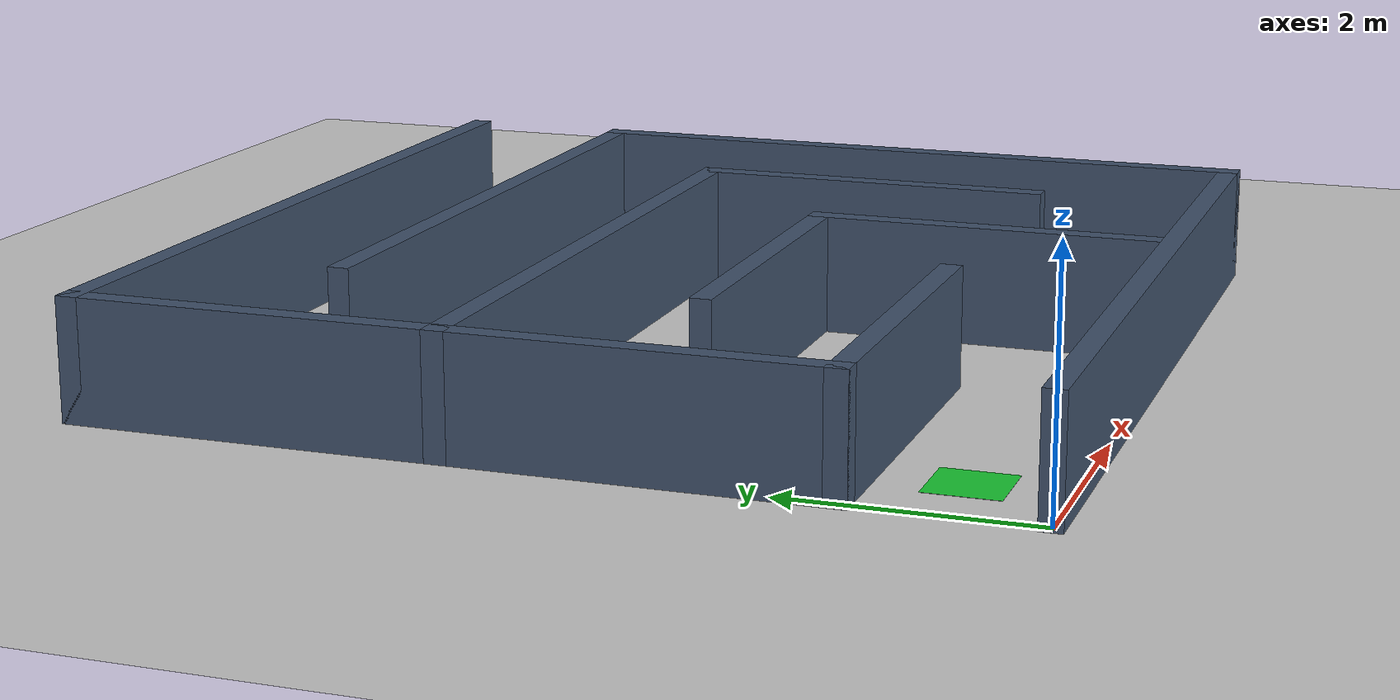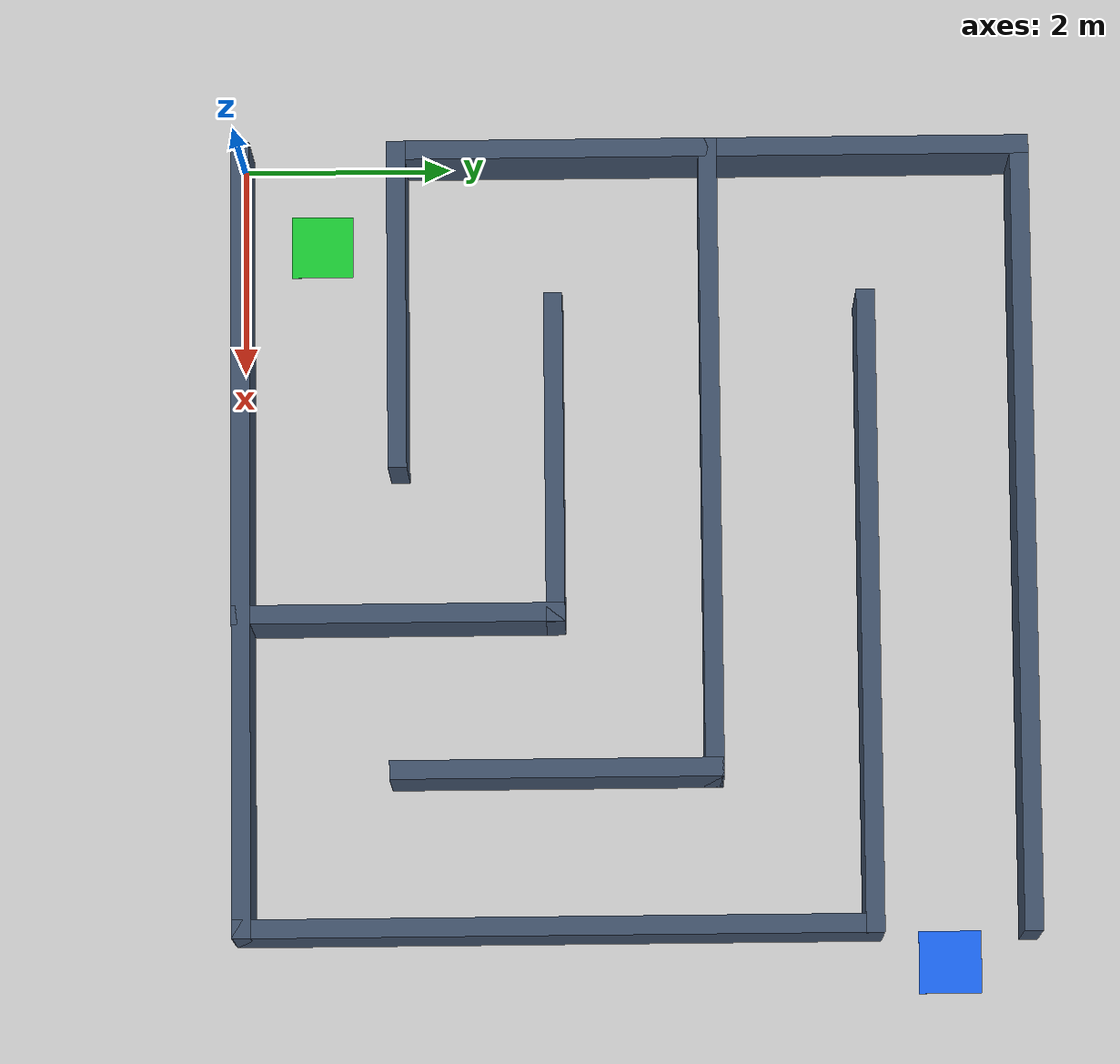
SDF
<?xml version="1.0"?>
<!-- 7.5 x 7.5 m single-route test maze; clear corridor width 1.32 m. Spawn: x=0.75 y=0.75 yaw=0; exit: x=7.5 y=6.75. -->
<sdf version="1.6">
  <world name="test_corridor">
    <include>
      <uri>model://sun</uri>
    </include>
    <include>
      <uri>model://ground_plane</uri>
    </include>
    <scene>
      <ambient>0.5 0.5 0.5 1</ambient>
      <background>0.7 0.7 0.7 1</background>
    </scene>
    <physics name="default_physics" type="ode">
      <max_step_size>0.001</max_step_size>
      <real_time_update_rate>1000</real_time_update_rate>
    </physics>
    <model name="wall_h_0_0">
      <static>true</static>
      <pose>3.7500 0.0000 0.5000 0 0 0</pose>
      <link name="link">
        <collision name="collision">
          <geometry>
            <box>
              <size>7.6800 0.1800 1.0000</size>
            </box>
          </geometry>
        </collision>
        <visual name="visual">
          <geometry>
            <box>
              <size>7.6800 0.1800 1.0000</size>
            </box>
          </geometry>
          <material>
            <ambient>0.25 0.32 0.42 1</ambient>
            <diffuse>0.25 0.32 0.42 1</diffuse>
          </material>
        </visual>
      </link>
    </model>
    <model name="wall_h_1_0">
      <static>true</static>
      <pose>1.5000 1.5000 0.5000 0 0 0</pose>
      <link name="link">
        <collision name="collision">
          <geometry>
            <box>
              <size>3.1800 0.1800 1.0000</size>
            </box>
          </geometry>
        </collision>
        <visual name="visual">
          <geometry>
            <box>
              <size>3.1800 0.1800 1.0000</size>
            </box>
          </geometry>
          <material>
            <ambient>0.25 0.32 0.42 1</ambient>
            <diffuse>0.25 0.32 0.42 1</diffuse>
          </material>
        </visual>
      </link>
    </model>
    <model name="wall_h_2_1">
      <static>true</static>
      <pose>3.0000 3.0000 0.5000 0 0 0</pose>
      <link name="link">
        <collision name="collision">
          <geometry>
            <box>
              <size>3.1800 0.1800 1.0000</size>
            </box>
          </geometry>
        </collision>
        <visual name="visual">
          <geometry>
            <box>
              <size>3.1800 0.1800 1.0000</size>
            </box>
          </geometry>
          <material>
            <ambient>0.25 0.32 0.42 1</ambient>
            <diffuse>0.25 0.32 0.42 1</diffuse>
          </material>
        </visual>
      </link>
    </model>
    <model name="wall_h_3_0">
      <static>true</static>
      <pose>3.0000 4.5000 0.5000 0 0 0</pose>
      <link name="link">
        <collision name="collision">
          <geometry>
            <box>
              <size>6.1800 0.1800 1.0000</size>
            </box>
          </geometry>
        </collision>
        <visual name="visual">
          <geometry>
            <box>
              <size>6.1800 0.1800 1.0000</size>
            </box>
          </geometry>
          <material>
            <ambient>0.25 0.32 0.42 1</ambient>
            <diffuse>0.25 0.32 0.42 1</diffuse>
          </material>
        </visual>
      </link>
    </model>
    <model name="wall_h_4_1">
      <static>true</static>
      <pose>4.5000 6.0000 0.5000 0 0 0</pose>
      <link name="link">
        <collision name="collision">
          <geometry>
            <box>
              <size>6.1800 0.1800 1.0000</size>
            </box>
          </geometry>
        </collision>
        <visual name="visual">
          <geometry>
            <box>
              <size>6.1800 0.1800 1.0000</size>
            </box>
          </geometry>
          <material>
            <ambient>0.25 0.32 0.42 1</ambient>
            <diffuse>0.25 0.32 0.42 1</diffuse>
          </material>
        </visual>
      </link>
    </model>
    <model name="wall_h_5_0">
      <static>true</static>
      <pose>3.7500 7.5000 0.5000 0 0 0</pose>
      <link name="link">
        <collision name="collision">
          <geometry>
            <box>
              <size>7.6800 0.1800 1.0000</size>
            </box>
          </geometry>
        </collision>
        <visual name="visual">
          <geometry>
            <box>
              <size>7.6800 0.1800 1.0000</size>
            </box>
          </geometry>
          <material>
            <ambient>0.25 0.32 0.42 1</ambient>
            <diffuse>0.25 0.32 0.42 1</diffuse>
          </material>
        </visual>
      </link>
    </model>
    <model name="wall_v_0_1">
      <static>true</static>
      <pose>0.0000 4.5000 0.5000 0 0 0</pose>
      <link name="link">
        <collision name="collision">
          <geometry>
            <box>
              <size>0.1800 6.1800 1.0000</size>
            </box>
          </geometry>
        </collision>
        <visual name="visual">
          <geometry>
            <box>
              <size>0.1800 6.1800 1.0000</size>
            </box>
          </geometry>
          <material>
            <ambient>0.25 0.32 0.42 1</ambient>
            <diffuse>0.25 0.32 0.42 1</diffuse>
          </material>
        </visual>
      </link>
    </model>
    <model name="wall_v_3_0">
      <static>true</static>
      <pose>4.5000 1.5000 0.5000 0 0 0</pose>
      <link name="link">
        <collision name="collision">
          <geometry>
            <box>
              <size>0.1800 3.1800 1.0000</size>
            </box>
          </geometry>
        </collision>
        <visual name="visual">
          <geometry>
            <box>
              <size>0.1800 3.1800 1.0000</size>
            </box>
          </geometry>
          <material>
            <ambient>0.25 0.32 0.42 1</ambient>
            <diffuse>0.25 0.32 0.42 1</diffuse>
          </material>
        </visual>
      </link>
    </model>
    <model name="wall_v_4_1">
      <static>true</static>
      <pose>6.0000 3.0000 0.5000 0 0 0</pose>
      <link name="link">
        <collision name="collision">
          <geometry>
            <box>
              <size>0.1800 3.1800 1.0000</size>
            </box>
          </geometry>
        </collision>
        <visual name="visual">
          <geometry>
            <box>
              <size>0.1800 3.1800 1.0000</size>
            </box>
          </geometry>
          <material>
            <ambient>0.25 0.32 0.42 1</ambient>
            <diffuse>0.25 0.32 0.42 1</diffuse>
          </material>
        </visual>
      </link>
    </model>
    <model name="wall_v_5_0">
      <static>true</static>
      <pose>7.5000 3.0000 0.5000 0 0 0</pose>
      <link name="link">
        <collision name="collision">
          <geometry>
            <box>
              <size>0.1800 6.1800 1.0000</size>
            </box>
          </geometry>
        </collision>
        <visual name="visual">
          <geometry>
            <box>
              <size>0.1800 6.1800 1.0000</size>
            </box>
          </geometry>
          <material>
            <ambient>0.25 0.32 0.42 1</ambient>
            <diffuse>0.25 0.32 0.42 1</diffuse>
          </material>
        </visual>
      </link>
    </model>
    <model name="start_marker">
      <static>true</static>
      <pose>0.7500 0.7500 0.0020 0 0 0</pose>
      <link name="link">
        <visual name="visual">
          <geometry>
            <box>
              <size>0.6000 0.6000 0.0020</size>
            </box>
          </geometry>
          <material>
            <ambient>0.1 0.8 0.2 1</ambient>
            <diffuse>0.1 0.8 0.2 1</diffuse>
          </material>
        </visual>
      </link>
    </model>
    <model name="exit_marker">
      <static>true</static>
      <pose>7.8000 6.7500 0.0020 0 0 0</pose>
      <link name="link">
        <visual name="visual">
          <geometry>
            <box>
              <size>0.6000 0.6000 0.0020</size>
            </box>
          </geometry>
          <material>
            <ambient>0.1 0.4 0.95 1</ambient>
            <diffuse>0.1 0.4 0.95 1</diffuse>
          </material>
        </visual>
      </link>
    </model>
  </world>
</sdf>
